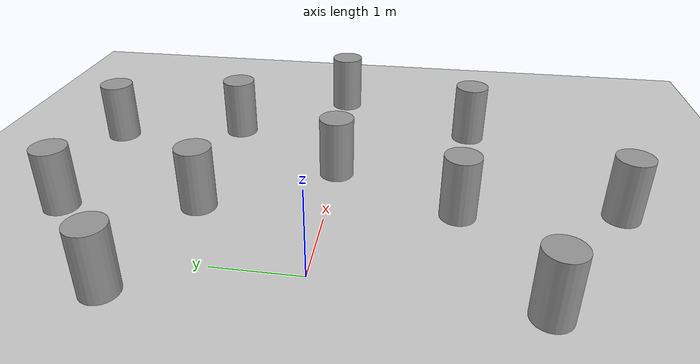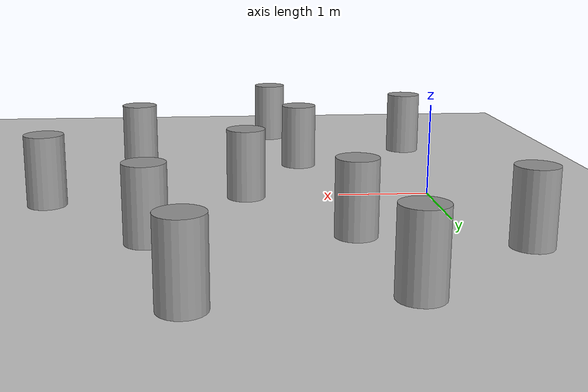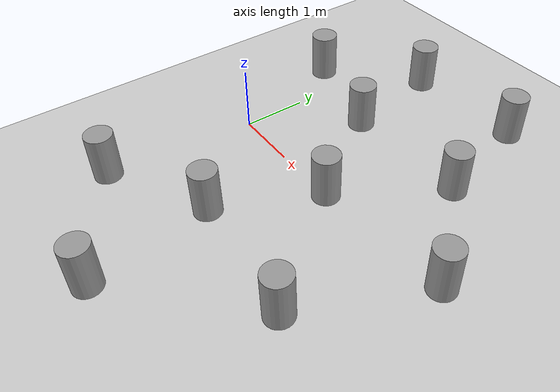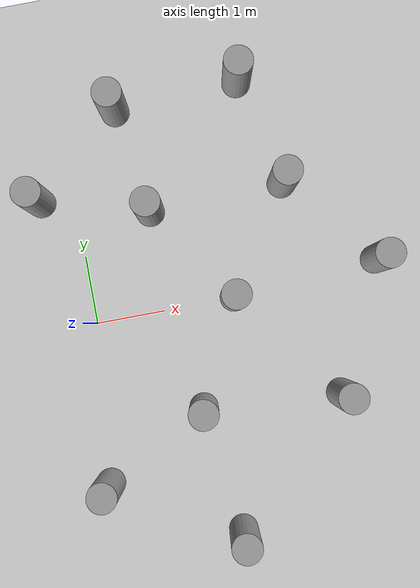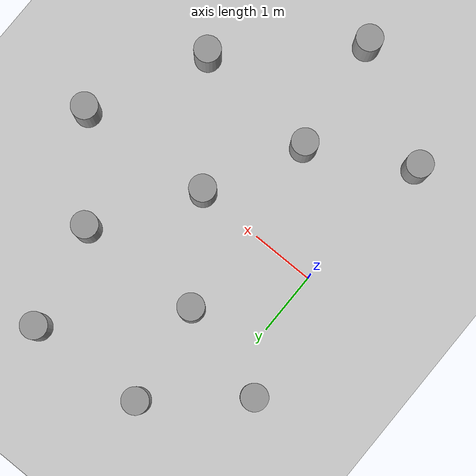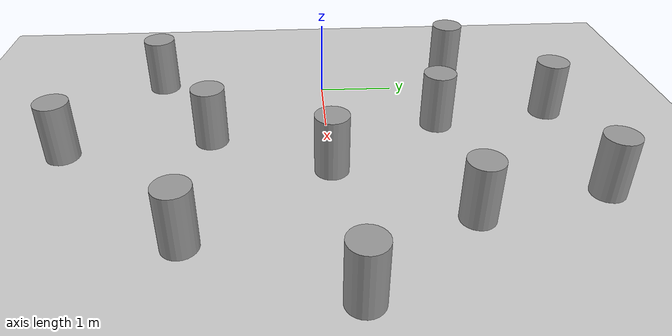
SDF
<sdf version="1.6">
 <world name="default">
  <light name="sun" type="directional">
   <pose>0 0 10 0 -0 0</pose>
   <diffuse>0.8 0.8 0.8 1</diffuse>
   <specular>0.2 0.2 0.2 1</specular>
   <attenuation>
    <range>1000</range>
    <constant>0.9</constant>
    <linear>0.01</linear>
    <quadratic>0.001</quadratic>
   </attenuation>
   <direction>-0.5 0.1 -0.9</direction>
  </light>
  <model name="ground_plane">
   <static>1</static>
   <link name="link">
    <collision name="collision">
     <geometry><plane><normal>0 0 1</normal><size>100 100</size></plane></geometry>
     <surface>
      <contact><collide_bitmask>65535</collide_bitmask></contact>
      <friction><ode><mu>100</mu><mu2>50</mu2></ode></friction>
     </surface>
    </collision>
    <visual name="visual">
     <cast_shadows>0</cast_shadows>
     <geometry><plane><normal>0 0 1</normal><size>100 100</size></plane></geometry>
     <material>
      <script><uri>file://media/materials/scripts/gazebo.material</uri><name>Gazebo/Grey</name></script>
     </material>
    </visual>
   </link>
  </model>
  <gravity>0 0 -9.8</gravity>
  <magnetic_field>6e-06 2.3e-05 -4.2e-05</magnetic_field>
  <atmosphere type="adiabatic"/>
  <physics name="default_physics" default="0" type="ode">
   <max_step_size>0.001</max_step_size>
   <real_time_factor>1</real_time_factor>
   <real_time_update_rate>1000</real_time_update_rate>
  </physics>
  <scene><ambient>0.4 0.4 0.4 1</ambient><background>0.7 0.7 0.7 1</background><shadows>1</shadows></scene>
  <spherical_coordinates>
   <surface_model>EARTH_WGS84</surface_model>
   <latitude_deg>0</latitude_deg>
   <longitude_deg>0</longitude_deg>
   <elevation>0</elevation>
   <heading_deg>0</heading_deg>
  </spherical_coordinates>
  <model name="unit_cylinder">
   <pose>2.03328 0.007223 0.384464 0 -0 1e-06</pose>
   <link name="link">
    <inertial>
     <mass>1</mass>
     <inertia><ixx>0.145833</ixx><ixy>0</ixy><ixz>0</ixz><iyy>0.145833</iyy><iyz>0</iyz><izz>0.125</izz></inertia>
    </inertial>
    <collision name="collision">
     <geometry><cylinder><radius>0.210279</radius><length>0.768929</length></cylinder></geometry>
    </collision>
    <visual name="visual">
     <geometry><cylinder><radius>0.210279</radius><length>0.768929</length></cylinder></geometry>
     <material>
      <script><name>Gazebo/Grey</name><uri>file://media/materials/scripts/gazebo.material</uri></script>
     </material>
    </visual>
   </link>
  </model>
  <model name="unit_cylinder_clone">
   <pose>1.29981 -1.48412 0.384464 0 -0 0</pose>
   <link name="link">
    <inertial>
     <mass>1</mass>
     <inertia><ixx>0.145833</ixx><ixy>0</ixy><ixz>0</ixz><iyy>0.145833</iyy><iyz>0</iyz><izz>0.125</izz></inertia>
    </inertial>
    <collision name="collision">
     <geometry><cylinder><radius>0.210279</radius><length>0.768929</length></cylinder></geometry>
    </collision>
    <visual name="visual">
     <geometry><cylinder><radius>0.210279</radius><length>0.768929</length></cylinder></geometry>
     <material>
      <script><name>Gazebo/Grey</name><uri>file://media/materials/scripts/gazebo.material</uri></script>
     </material>
    </visual>
   </link>
  </model>
  <model name="unit_cylinder_clone_0">
   <pose>1.05602 1.4662 0.384455 0 -0 0</pose>
   <link name="link">
    <inertial>
     <mass>1</mass>
     <inertia><ixx>0.145833</ixx><ixy>0</ixy><ixz>0</ixz><iyy>0.145833</iyy><iyz>0</iyz><izz>0.125</izz></inertia>
    </inertial>
    <collision name="collision">
     <geometry><cylinder><radius>0.210279</radius><length>0.768929</length></cylinder></geometry>
    </collision>
    <visual name="visual">
     <geometry><cylinder><radius>0.210279</radius><length>0.768929</length></cylinder></geometry>
     <material>
      <script><name>Gazebo/Grey</name><uri>file://media/materials/scripts/gazebo.material</uri></script>
     </material>
    </visual>
   </link>
  </model>
  <model name="unit_cylinder_clone_1">
   <pose>-0.219719 -2.30039 0.384464 0 -0 0</pose>
   <link name="link">
    <inertial>
     <mass>1</mass>
     <inertia><ixx>0.145833</ixx><ixy>0</ixy><ixz>0</ixz><iyy>0.145833</iyy><iyz>0</iyz><izz>0.125</izz></inertia>
    </inertial>
    <collision name="collision">
     <geometry><cylinder><radius>0.210279</radius><length>0.768929</length></cylinder></geometry>
    </collision>
    <visual name="visual">
     <geometry><cylinder><radius>0.210279</radius><length>0.768929</length></cylinder></geometry>
     <material>
      <script><name>Gazebo/Grey</name><uri>file://media/materials/scripts/gazebo.material</uri></script>
     </material>
    </visual>
   </link>
  </model>
  <model name="unit_cylinder_clone_2">
   <pose>-0.49762 1.89512 0.384455 0 -0 0</pose>
   <link name="link">
    <inertial>
     <mass>1</mass>
     <inertia><ixx>0.145833</ixx><ixy>0</ixy><ixz>0</ixz><iyy>0.145833</iyy><iyz>0</iyz><izz>0.125</izz></inertia>
    </inertial>
    <collision name="collision">
     <geometry><cylinder><radius>0.210279</radius><length>0.768929</length></cylinder></geometry>
    </collision>
    <visual name="visual">
     <geometry><cylinder><radius>0.210279</radius><length>0.768929</length></cylinder></geometry>
     <material>
      <script><name>Gazebo/Grey</name><uri>file://media/materials/scripts/gazebo.material</uri></script>
     </material>
    </visual>
   </link>
  </model>
  <model name="unit_cylinder_clone_3">
   <pose>0.813985 3.03342 0.384464 0 -0 0</pose>
   <link name="link">
    <inertial>
     <mass>1</mass>
     <inertia><ixx>0.145833</ixx><ixy>0</ixy><ixz>0</ixz><iyy>0.145833</iyy><iyz>0</iyz><izz>0.125</izz></inertia>
    </inertial>
    <collision name="collision">
     <geometry><cylinder><radius>0.210279</radius><length>0.768929</length></cylinder></geometry>
    </collision>
    <visual name="visual">
     <geometry><cylinder><radius>0.210279</radius><length>0.768929</length></cylinder></geometry>
     <material>
      <script><name>Gazebo/Grey</name><uri>file://media/materials/scripts/gazebo.material</uri></script>
     </material>
    </visual>
   </link>
  </model>
  <model name="unit_cylinder_clone_4">
   <pose>3.03039 1.52482 0.384455 0 -0 0</pose>
   <link name="link">
    <inertial>
     <mass>1</mass>
     <inertia><ixx>0.145833</ixx><ixy>0</ixy><ixz>0</ixz><iyy>0.145833</iyy><iyz>0</iyz><izz>0.125</izz></inertia>
    </inertial>
    <collision name="collision">
     <geometry><cylinder><radius>0.210279</radius><length>0.768929</length></cylinder></geometry>
    </collision>
    <visual name="visual">
     <geometry><cylinder><radius>0.210279</radius><length>0.768929</length></cylinder></geometry>
     <material>
      <script><name>Gazebo/Grey</name><uri>file://media/materials/scripts/gazebo.material</uri></script>
     </material>
    </visual>
   </link>
  </model>
  <model name="unit_cylinder_clone_5">
   <pose>2.65782 3.12975 0.384456 1e-06 1e-06 0</pose>
   <link name="link">
    <inertial>
     <mass>1</mass>
     <inertia><ixx>0.145833</ixx><ixy>0</ixy><ixz>0</ixz><iyy>0.145833</iyy><iyz>0</iyz><izz>0.125</izz></inertia>
    </inertial>
    <collision name="collision">
     <geometry><cylinder><radius>0.210279</radius><length>0.768929</length></cylinder></geometry>
    </collision>
    <visual name="visual">
     <geometry><cylinder><radius>0.210279</radius><length>0.768929</length></cylinder></geometry>
     <material>
      <script><name>Gazebo/Grey</name><uri>file://media/materials/scripts/gazebo.material</uri></script>
     </material>
    </visual>
   </link>
  </model>
  <model name="unit_cylinder_clone_6">
   <pose>3.2973 -1.64472 0.384455 0 -0 0</pose>
   <link name="link">
    <inertial>
     <mass>1</mass>
     <inertia><ixx>0.145833</ixx><ixy>0</ixy><ixz>0</ixz><iyy>0.145833</iyy><iyz>0</iyz><izz>0.125</izz></inertia>
    </inertial>
    <collision name="collision">
     <geometry><cylinder><radius>0.210279</radius><length>0.768929</length></cylinder></geometry>
    </collision>
    <visual name="visual">
     <geometry><cylinder><radius>0.210279</radius><length>0.768929</length></cylinder></geometry>
     <material>
      <script><name>Gazebo/Grey</name><uri>file://media/materials/scripts/gazebo.material</uri></script>
     </material>
    </visual>
   </link>
  </model>
  <model name="unit_cylinder_clone_7">
   <pose>1.53881 -3.3022 0.384455 0 -0 0</pose>
   <link name="link">
    <inertial>
     <mass>1</mass>
     <inertia><ixx>0.145833</ixx><ixy>0</ixy><ixz>0</ixz><iyy>0.145833</iyy><iyz>0</iyz><izz>0.125</izz></inertia>
    </inertial>
    <collision name="collision">
     <geometry><cylinder><radius>0.210279</radius><length>0.768929</length></cylinder></geometry>
    </collision>
    <visual name="visual">
     <geometry><cylinder><radius>0.210279</radius><length>0.768929</length></cylinder></geometry>
     <material>
      <script><name>Gazebo/Grey</name><uri>file://media/materials/scripts/gazebo.material</uri></script>
     </material>
    </visual>
   </link>
  </model>
  <model name="unit_cylinder_clone_8">
   <pose>4.16582 0.169952 0.384464 -0 -0 -0</pose>
   <link name="link">
    <inertial>
     <mass>1</mass>
     <inertia><ixx>0.145833</ixx><ixy>0</ixy><ixz>0</ixz><iyy>0.145833</iyy><iyz>0</iyz><izz>0.125</izz></inertia>
    </inertial>
    <collision name="collision">
     <geometry><cylinder><radius>0.210279</radius><length>0.768929</length></cylinder></geometry>
    </collision>
    <visual name="visual">
     <geometry><cylinder><radius>0.210279</radius><length>0.768929</length></cylinder></geometry>
     <material>
      <script><name>Gazebo/Grey</name><uri>file://media/materials/scripts/gazebo.material</uri></script>
     </material>
    </visual>
   </link>
  </model>
 </world>
</sdf>
